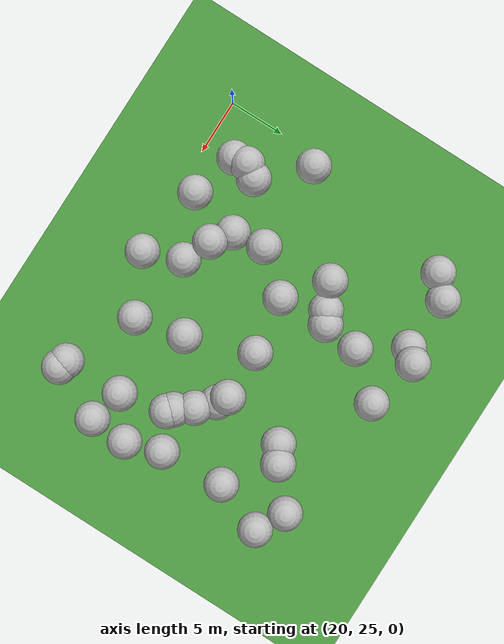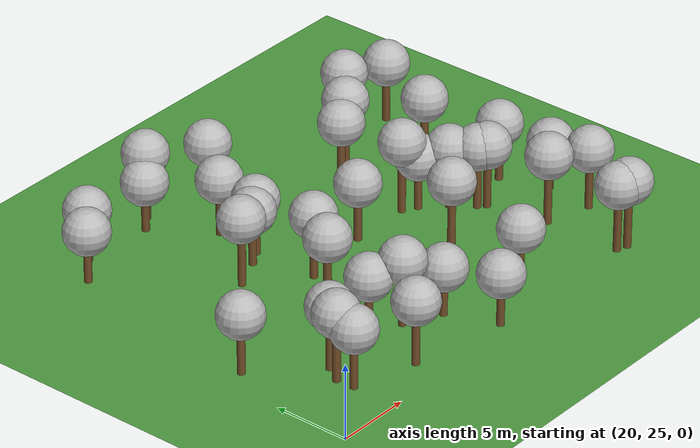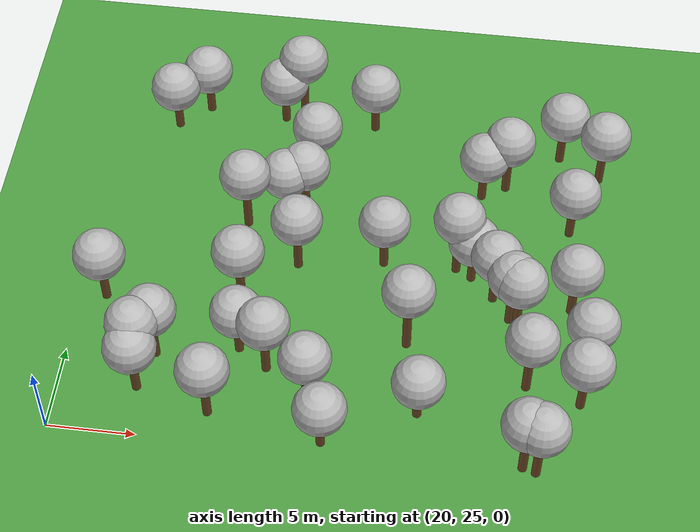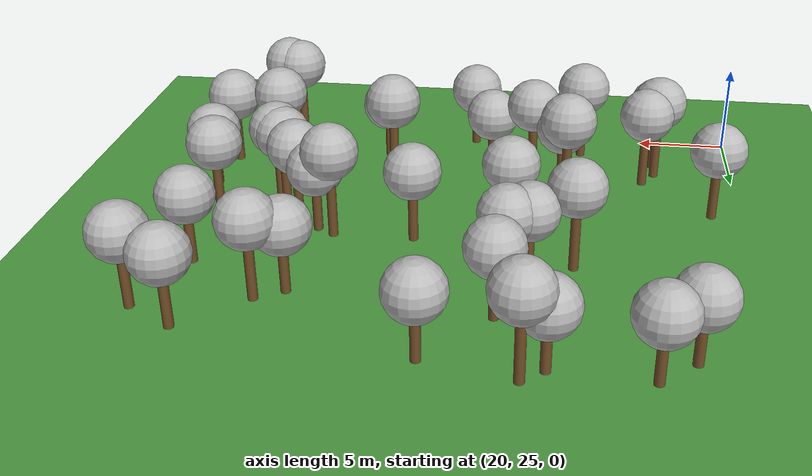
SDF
<sdf version="1.5">
 <world name="default">
  <model name="tree_simple475">
   <static>1</static>
   <link name="link">
    <pose>0 0 0.1 0 -0 0</pose>
    <collision name="collision_trunk">
     <pose>0 0 2 0 -0 0</pose>
     <geometry><cylinder><radius>0.25</radius><length>4</length></cylinder></geometry>
    </collision>
    <collision name="collision_treetop">
     <pose>0 0 5.2 0 -0 0</pose>
     <geometry><sphere><radius>1.5</radius></sphere></geometry>
    </collision>
    <visual name="trunk">
     <pose>0 0 2 0 -0 0</pose>
     <geometry><cylinder><radius>0.25</radius><length>4</length></cylinder></geometry>
     <material>
      <script>
       <uri>model://tree_simple/scripts</uri>
       <uri>model://tree_simple/materials/textures</uri>
       <name>TreeSimple/Trunk</name>
      </script>
     </material>
    </visual>
    <visual name="treetop">
     <pose>0 0 5.2 0 -0 0</pose>
     <geometry><sphere><radius>1.5</radius></sphere></geometry>
     <material>
      <script>
       <uri>model://tree_simple/scripts</uri>
       <uri>model://tree_simple/materials/textures</uri>
       <name>TreeSimple/Treetop</name>
      </script>
     </material>
    </visual>
   </link>
   <pose>30.9431222124 49.7431013716 -0.7436420474944433 0 -0 0</pose>
  </model>
  <model name="tree_simple459">
   <static>1</static>
   <link name="link">
    <pose>0 0 0.1 0 -0 0</pose>
    <collision name="collision_trunk">
     <pose>0 0 2 0 -0 0</pose>
     <geometry><cylinder><radius>0.25</radius><length>4</length></cylinder></geometry>
    </collision>
    <collision name="collision_treetop">
     <pose>0 0 5.2 0 -0 0</pose>
     <geometry><sphere><radius>1.5</radius></sphere></geometry>
    </collision>
    <visual name="trunk">
     <pose>0 0 2 0 -0 0</pose>
     <geometry><cylinder><radius>0.25</radius><length>4</length></cylinder></geometry>
     <material>
      <script>
       <uri>model://tree_simple/scripts</uri>
       <uri>model://tree_simple/materials/textures</uri>
       <name>TreeSimple/Trunk</name>
      </script>
     </material>
    </visual>
    <visual name="treetop">
     <pose>0 0 5.2 0 -0 0</pose>
     <geometry><sphere><radius>1.5</radius></sphere></geometry>
     <material>
      <script>
       <uri>model://tree_simple/scripts</uri>
       <uri>model://tree_simple/materials/textures</uri>
       <name>TreeSimple/Treetop</name>
      </script>
     </material>
    </visual>
   </link>
   <pose>23.3051385383 47.6025012909 -1.8805198108866412 0 -0 0</pose>
  </model>
  <model name="tree_simple452">
   <static>1</static>
   <link name="link">
    <pose>0 0 0.1 0 -0 0</pose>
    <collision name="collision_trunk">
     <pose>0 0 2 0 -0 0</pose>
     <geometry><cylinder><radius>0.25</radius><length>4</length></cylinder></geometry>
    </collision>
    <collision name="collision_treetop">
     <pose>0 0 5.2 0 -0 0</pose>
     <geometry><sphere><radius>1.5</radius></sphere></geometry>
    </collision>
    <visual name="trunk">
     <pose>0 0 2 0 -0 0</pose>
     <geometry><cylinder><radius>0.25</radius><length>4</length></cylinder></geometry>
     <material>
      <script>
       <uri>model://tree_simple/scripts</uri>
       <uri>model://tree_simple/materials/textures</uri>
       <name>TreeSimple/Trunk</name>
      </script>
     </material>
    </visual>
    <visual name="treetop">
     <pose>0 0 5.2 0 -0 0</pose>
     <geometry><sphere><radius>1.5</radius></sphere></geometry>
     <material>
      <script>
       <uri>model://tree_simple/scripts</uri>
       <uri>model://tree_simple/materials/textures</uri>
       <name>TreeSimple/Treetop</name>
      </script>
     </material>
    </visual>
   </link>
   <pose>21.4881506157 34.0286005496 -1.3604405912358852 0 -0 0</pose>
  </model>
  <model name="tree_simple449">
   <static>1</static>
   <link name="link">
    <pose>0 0 0.1 0 -0 0</pose>
    <collision name="collision_trunk">
     <pose>0 0 2 0 -0 0</pose>
     <geometry><cylinder><radius>0.25</radius><length>4</length></cylinder></geometry>
    </collision>
    <collision name="collision_treetop">
     <pose>0 0 5.2 0 -0 0</pose>
     <geometry><sphere><radius>1.5</radius></sphere></geometry>
    </collision>
    <visual name="trunk">
     <pose>0 0 2 0 -0 0</pose>
     <geometry><cylinder><radius>0.25</radius><length>4</length></cylinder></geometry>
     <material>
      <script>
       <uri>model://tree_simple/scripts</uri>
       <uri>model://tree_simple/materials/textures</uri>
       <name>TreeSimple/Trunk</name>
      </script>
     </material>
    </visual>
    <visual name="treetop">
     <pose>0 0 5.2 0 -0 0</pose>
     <geometry><sphere><radius>1.5</radius></sphere></geometry>
     <material>
      <script>
       <uri>model://tree_simple/scripts</uri>
       <uri>model://tree_simple/materials/textures</uri>
       <name>TreeSimple/Treetop</name>
      </script>
     </material>
    </visual>
   </link>
   <pose>32.2301413543 37.584175072 -1.0511935308067706 0 -0 0</pose>
  </model>
  <model name="tree_simple435">
   <static>1</static>
   <link name="link">
    <pose>0 0 0.1 0 -0 0</pose>
    <collision name="collision_trunk">
     <pose>0 0 2 0 -0 0</pose>
     <geometry><cylinder><radius>0.25</radius><length>4</length></cylinder></geometry>
    </collision>
    <collision name="collision_treetop">
     <pose>0 0 5.2 0 -0 0</pose>
     <geometry><sphere><radius>1.5</radius></sphere></geometry>
    </collision>
    <visual name="trunk">
     <pose>0 0 2 0 -0 0</pose>
     <geometry><cylinder><radius>0.25</radius><length>4</length></cylinder></geometry>
     <material>
      <script>
       <uri>model://tree_simple/scripts</uri>
       <uri>model://tree_simple/materials/textures</uri>
       <name>TreeSimple/Trunk</name>
      </script>
     </material>
    </visual>
    <visual name="treetop">
     <pose>0 0 5.2 0 -0 0</pose>
     <geometry><sphere><radius>1.5</radius></sphere></geometry>
     <material>
      <script>
       <uri>model://tree_simple/scripts</uri>
       <uri>model://tree_simple/materials/textures</uri>
       <name>TreeSimple/Treetop</name>
      </script>
     </material>
    </visual>
   </link>
   <pose>25.0532985597 49.162593115 -1.7925780945889098 0 -0 0</pose>
  </model>
  <model name="tree_simple426">
   <static>1</static>
   <link name="link">
    <pose>0 0 0.1 0 -0 0</pose>
    <collision name="collision_trunk">
     <pose>0 0 2 0 -0 0</pose>
     <geometry><cylinder><radius>0.25</radius><length>4</length></cylinder></geometry>
    </collision>
    <collision name="collision_treetop">
     <pose>0 0 5.2 0 -0 0</pose>
     <geometry><sphere><radius>1.5</radius></sphere></geometry>
    </collision>
    <visual name="trunk">
     <pose>0 0 2 0 -0 0</pose>
     <geometry><cylinder><radius>0.25</radius><length>4</length></cylinder></geometry>
     <material>
      <script>
       <uri>model://tree_simple/scripts</uri>
       <uri>model://tree_simple/materials/textures</uri>
       <name>TreeSimple/Trunk</name>
      </script>
     </material>
    </visual>
    <visual name="treetop">
     <pose>0 0 5.2 0 -0 0</pose>
     <geometry><sphere><radius>1.5</radius></sphere></geometry>
     <material>
      <script>
       <uri>model://tree_simple/scripts</uri>
       <uri>model://tree_simple/materials/textures</uri>
       <name>TreeSimple/Treetop</name>
      </script>
     </material>
    </visual>
   </link>
   <pose>48.2961501598 36.1951986296 -1.3792273480327186 0 -0 0</pose>
  </model>
  <model name="tree_simple414">
   <static>1</static>
   <link name="link">
    <pose>0 0 0.1 0 -0 0</pose>
    <collision name="collision_trunk">
     <pose>0 0 2 0 -0 0</pose>
     <geometry><cylinder><radius>0.25</radius><length>4</length></cylinder></geometry>
    </collision>
    <collision name="collision_treetop">
     <pose>0 0 5.2 0 -0 0</pose>
     <geometry><sphere><radius>1.5</radius></sphere></geometry>
    </collision>
    <visual name="trunk">
     <pose>0 0 2 0 -0 0</pose>
     <geometry><cylinder><radius>0.25</radius><length>4</length></cylinder></geometry>
     <material>
      <script>
       <uri>model://tree_simple/scripts</uri>
       <uri>model://tree_simple/materials/textures</uri>
       <name>TreeSimple/Trunk</name>
      </script>
     </material>
    </visual>
    <visual name="treetop">
     <pose>0 0 5.2 0 -0 0</pose>
     <geometry><sphere><radius>1.5</radius></sphere></geometry>
     <material>
      <script>
       <uri>model://tree_simple/scripts</uri>
       <uri>model://tree_simple/materials/textures</uri>
       <name>TreeSimple/Treetop</name>
      </script>
     </material>
    </visual>
   </link>
   <pose>44.7953546514 35.1223055557 -1.1160719340544396 0 -0 0</pose>
  </model>
  <model name="tree_simple402">
   <static>1</static>
   <link name="link">
    <pose>0 0 0.1 0 -0 0</pose>
    <collision name="collision_trunk">
     <pose>0 0 2 0 -0 0</pose>
     <geometry><cylinder><radius>0.25</radius><length>4</length></cylinder></geometry>
    </collision>
    <collision name="collision_treetop">
     <pose>0 0 5.2 0 -0 0</pose>
     <geometry><sphere><radius>1.5</radius></sphere></geometry>
    </collision>
    <visual name="trunk">
     <pose>0 0 2 0 -0 0</pose>
     <geometry><cylinder><radius>0.25</radius><length>4</length></cylinder></geometry>
     <material>
      <script>
       <uri>model://tree_simple/scripts</uri>
       <uri>model://tree_simple/materials/textures</uri>
       <name>TreeSimple/Trunk</name>
      </script>
     </material>
    </visual>
    <visual name="treetop">
     <pose>0 0 5.2 0 -0 0</pose>
     <geometry><sphere><radius>1.5</radius></sphere></geometry>
     <material>
      <script>
       <uri>model://tree_simple/scripts</uri>
       <uri>model://tree_simple/materials/textures</uri>
       <name>TreeSimple/Treetop</name>
      </script>
     </material>
    </visual>
   </link>
   <pose>46.1530364681 25.5114731744 -0.8119257259758308 0 -0 0</pose>
  </model>
  <model name="tree_simple388">
   <static>1</static>
   <link name="link">
    <pose>0 0 0.1 0 -0 0</pose>
    <collision name="collision_trunk">
     <pose>0 0 2 0 -0 0</pose>
     <geometry><cylinder><radius>0.25</radius><length>4</length></cylinder></geometry>
    </collision>
    <collision name="collision_treetop">
     <pose>0 0 5.2 0 -0 0</pose>
     <geometry><sphere><radius>1.5</radius></sphere></geometry>
    </collision>
    <visual name="trunk">
     <pose>0 0 2 0 -0 0</pose>
     <geometry><cylinder><radius>0.25</radius><length>4</length></cylinder></geometry>
     <material>
      <script>
       <uri>model://tree_simple/scripts</uri>
       <uri>model://tree_simple/materials/textures</uri>
       <name>TreeSimple/Trunk</name>
      </script>
     </material>
    </visual>
    <visual name="treetop">
     <pose>0 0 5.2 0 -0 0</pose>
     <geometry><sphere><radius>1.5</radius></sphere></geometry>
     <material>
      <script>
       <uri>model://tree_simple/scripts</uri>
       <uri>model://tree_simple/materials/textures</uri>
       <name>TreeSimple/Treetop</name>
      </script>
     </material>
    </visual>
   </link>
   <pose>42.4041487093 37.8396173547 -1.752244202198721 0 -0 0</pose>
  </model>
  <model name="tree_simple384">
   <static>1</static>
   <link name="link">
    <pose>0 0 0.1 0 -0 0</pose>
    <collision name="collision_trunk">
     <pose>0 0 2 0 -0 0</pose>
     <geometry><cylinder><radius>0.25</radius><length>4</length></cylinder></geometry>
    </collision>
    <collision name="collision_treetop">
     <pose>0 0 5.2 0 -0 0</pose>
     <geometry><sphere><radius>1.5</radius></sphere></geometry>
    </collision>
    <visual name="trunk">
     <pose>0 0 2 0 -0 0</pose>
     <geometry><cylinder><radius>0.25</radius><length>4</length></cylinder></geometry>
     <material>
      <script>
       <uri>model://tree_simple/scripts</uri>
       <uri>model://tree_simple/materials/textures</uri>
       <name>TreeSimple/Trunk</name>
      </script>
     </material>
    </visual>
    <visual name="treetop">
     <pose>0 0 5.2 0 -0 0</pose>
     <geometry><sphere><radius>1.5</radius></sphere></geometry>
     <material>
      <script>
       <uri>model://tree_simple/scripts</uri>
       <uri>model://tree_simple/materials/textures</uri>
       <name>TreeSimple/Treetop</name>
      </script>
     </material>
    </visual>
   </link>
   <pose>47.965270182 41.8315973536 -1.5592724970645218 0 -0 0</pose>
  </model>
  <model name="tree_simple366">
   <static>1</static>
   <link name="link">
    <pose>0 0 0.1 0 -0 0</pose>
    <collision name="collision_trunk">
     <pose>0 0 2 0 -0 0</pose>
     <geometry><cylinder><radius>0.25</radius><length>4</length></cylinder></geometry>
    </collision>
    <collision name="collision_treetop">
     <pose>0 0 5.2 0 -0 0</pose>
     <geometry><sphere><radius>1.5</radius></sphere></geometry>
    </collision>
    <visual name="trunk">
     <pose>0 0 2 0 -0 0</pose>
     <geometry><cylinder><radius>0.25</radius><length>4</length></cylinder></geometry>
     <material>
      <script>
       <uri>model://tree_simple/scripts</uri>
       <uri>model://tree_simple/materials/textures</uri>
       <name>TreeSimple/Trunk</name>
      </script>
     </material>
    </visual>
    <visual name="treetop">
     <pose>0 0 5.2 0 -0 0</pose>
     <geometry><sphere><radius>1.5</radius></sphere></geometry>
     <material>
      <script>
       <uri>model://tree_simple/scripts</uri>
       <uri>model://tree_simple/materials/textures</uri>
       <name>TreeSimple/Treetop</name>
      </script>
     </material>
    </visual>
   </link>
   <pose>37.2116014065 38.3075288524 -1.3963401429729114 0 -0 0</pose>
  </model>
  <model name="tree_simple345">
   <static>1</static>
   <link name="link">
    <pose>0 0 0.1 0 -0 0</pose>
    <collision name="collision_trunk">
     <pose>0 0 2 0 -0 0</pose>
     <geometry><cylinder><radius>0.25</radius><length>4</length></cylinder></geometry>
    </collision>
    <collision name="collision_treetop">
     <pose>0 0 5.2 0 -0 0</pose>
     <geometry><sphere><radius>1.5</radius></sphere></geometry>
    </collision>
    <visual name="trunk">
     <pose>0 0 2 0 -0 0</pose>
     <geometry><cylinder><radius>0.25</radius><length>4</length></cylinder></geometry>
     <material>
      <script>
       <uri>model://tree_simple/scripts</uri>
       <uri>model://tree_simple/materials/textures</uri>
       <name>TreeSimple/Trunk</name>
      </script>
     </material>
    </visual>
    <visual name="treetop">
     <pose>0 0 5.2 0 -0 0</pose>
     <geometry><sphere><radius>1.5</radius></sphere></geometry>
     <material>
      <script>
       <uri>model://tree_simple/scripts</uri>
       <uri>model://tree_simple/materials/textures</uri>
       <name>TreeSimple/Treetop</name>
      </script>
     </material>
    </visual>
   </link>
   <pose>28.6628994432 26.9095330542 -1.0408893927973466 0 -0 0</pose>
  </model>
  <model name="tree_simple337">
   <static>1</static>
   <link name="link">
    <pose>0 0 0.1 0 -0 0</pose>
    <collision name="collision_trunk">
     <pose>0 0 2 0 -0 0</pose>
     <geometry><cylinder><radius>0.25</radius><length>4</length></cylinder></geometry>
    </collision>
    <collision name="collision_treetop">
     <pose>0 0 5.2 0 -0 0</pose>
     <geometry><sphere><radius>1.5</radius></sphere></geometry>
    </collision>
    <visual name="trunk">
     <pose>0 0 2 0 -0 0</pose>
     <geometry><cylinder><radius>0.25</radius><length>4</length></cylinder></geometry>
     <material>
      <script>
       <uri>model://tree_simple/scripts</uri>
       <uri>model://tree_simple/materials/textures</uri>
       <name>TreeSimple/Trunk</name>
      </script>
     </material>
    </visual>
    <visual name="treetop">
     <pose>0 0 5.2 0 -0 0</pose>
     <geometry><sphere><radius>1.5</radius></sphere></geometry>
     <material>
      <script>
       <uri>model://tree_simple/scripts</uri>
       <uri>model://tree_simple/materials/textures</uri>
       <name>TreeSimple/Treetop</name>
      </script>
     </material>
    </visual>
   </link>
   <pose>43.9549385006 44.8684303608 -1.0075417705958503 0 -0 0</pose>
  </model>
  <model name="tree_simple332">
   <static>1</static>
   <link name="link">
    <pose>0 0 0.1 0 -0 0</pose>
    <collision name="collision_trunk">
     <pose>0 0 2 0 -0 0</pose>
     <geometry><cylinder><radius>0.25</radius><length>4</length></cylinder></geometry>
    </collision>
    <collision name="collision_treetop">
     <pose>0 0 5.2 0 -0 0</pose>
     <geometry><sphere><radius>1.5</radius></sphere></geometry>
    </collision>
    <visual name="trunk">
     <pose>0 0 2 0 -0 0</pose>
     <geometry><cylinder><radius>0.25</radius><length>4</length></cylinder></geometry>
     <material>
      <script>
       <uri>model://tree_simple/scripts</uri>
       <uri>model://tree_simple/materials/textures</uri>
       <name>TreeSimple/Trunk</name>
      </script>
     </material>
    </visual>
    <visual name="treetop">
     <pose>0 0 5.2 0 -0 0</pose>
     <geometry><sphere><radius>1.5</radius></sphere></geometry>
     <material>
      <script>
       <uri>model://tree_simple/scripts</uri>
       <uri>model://tree_simple/materials/textures</uri>
       <name>TreeSimple/Treetop</name>
      </script>
     </material>
    </visual>
   </link>
   <pose>39.1289157524 32.636662066 -0.0 0 -0 0</pose>
  </model>
  <model name="tree_simple313">
   <static>1</static>
   <link name="link">
    <pose>0 0 0.1 0 -0 0</pose>
    <collision name="collision_trunk">
     <pose>0 0 2 0 -0 0</pose>
     <geometry><cylinder><radius>0.25</radius><length>4</length></cylinder></geometry>
    </collision>
    <collision name="collision_treetop">
     <pose>0 0 5.2 0 -0 0</pose>
     <geometry><sphere><radius>1.5</radius></sphere></geometry>
    </collision>
    <visual name="trunk">
     <pose>0 0 2 0 -0 0</pose>
     <geometry><cylinder><radius>0.25</radius><length>4</length></cylinder></geometry>
     <material>
      <script>
       <uri>model://tree_simple/scripts</uri>
       <uri>model://tree_simple/materials/textures</uri>
       <name>TreeSimple/Trunk</name>
      </script>
     </material>
    </visual>
    <visual name="treetop">
     <pose>0 0 5.2 0 -0 0</pose>
     <geometry><sphere><radius>1.5</radius></sphere></geometry>
     <material>
      <script>
       <uri>model://tree_simple/scripts</uri>
       <uri>model://tree_simple/materials/textures</uri>
       <name>TreeSimple/Treetop</name>
      </script>
     </material>
    </visual>
   </link>
   <pose>25.1046881591 30.4098930382 -1.074062581670051 0 -0 0</pose>
  </model>
  <model name="tree_simple306">
   <static>1</static>
   <link name="link">
    <pose>0 0 0.1 0 -0 0</pose>
    <collision name="collision_trunk">
     <pose>0 0 2 0 -0 0</pose>
     <geometry><cylinder><radius>0.25</radius><length>4</length></cylinder></geometry>
    </collision>
    <collision name="collision_treetop">
     <pose>0 0 5.2 0 -0 0</pose>
     <geometry><sphere><radius>1.5</radius></sphere></geometry>
    </collision>
    <visual name="trunk">
     <pose>0 0 2 0 -0 0</pose>
     <geometry><cylinder><radius>0.25</radius><length>4</length></cylinder></geometry>
     <material>
      <script>
       <uri>model://tree_simple/scripts</uri>
       <uri>model://tree_simple/materials/textures</uri>
       <name>TreeSimple/Trunk</name>
      </script>
     </material>
    </visual>
    <visual name="treetop">
     <pose>0 0 5.2 0 -0 0</pose>
     <geometry><sphere><radius>1.5</radius></sphere></geometry>
     <material>
      <script>
       <uri>model://tree_simple/scripts</uri>
       <uri>model://tree_simple/materials/textures</uri>
       <name>TreeSimple/Treetop</name>
      </script>
     </material>
    </visual>
   </link>
   <pose>41.4749799485 38.3641433375 -0.5054580390471515 0 -0 0</pose>
  </model>
  <model name="tree_simple295">
   <static>1</static>
   <link name="link">
    <pose>0 0 0.1 0 -0 0</pose>
    <collision name="collision_trunk">
     <pose>0 0 2 0 -0 0</pose>
     <geometry><cylinder><radius>0.25</radius><length>4</length></cylinder></geometry>
    </collision>
    <collision name="collision_treetop">
     <pose>0 0 5.2 0 -0 0</pose>
     <geometry><sphere><radius>1.5</radius></sphere></geometry>
    </collision>
    <visual name="trunk">
     <pose>0 0 2 0 -0 0</pose>
     <geometry><cylinder><radius>0.25</radius><length>4</length></cylinder></geometry>
     <material>
      <script>
       <uri>model://tree_simple/scripts</uri>
       <uri>model://tree_simple/materials/textures</uri>
       <name>TreeSimple/Trunk</name>
      </script>
     </material>
    </visual>
    <visual name="treetop">
     <pose>0 0 5.2 0 -0 0</pose>
     <geometry><sphere><radius>1.5</radius></sphere></geometry>
     <material>
      <script>
       <uri>model://tree_simple/scripts</uri>
       <uri>model://tree_simple/materials/textures</uri>
       <name>TreeSimple/Treetop</name>
      </script>
     </material>
    </visual>
   </link>
   <pose>24.4545500201 28.0657933919 -1.3475005062212249 0 -0 0</pose>
  </model>
  <model name="tree_simple294">
   <static>1</static>
   <link name="link">
    <pose>0 0 0.1 0 -0 0</pose>
    <collision name="collision_trunk">
     <pose>0 0 2 0 -0 0</pose>
     <geometry><cylinder><radius>0.25</radius><length>4</length></cylinder></geometry>
    </collision>
    <collision name="collision_treetop">
     <pose>0 0 5.2 0 -0 0</pose>
     <geometry><sphere><radius>1.5</radius></sphere></geometry>
    </collision>
    <visual name="trunk">
     <pose>0 0 2 0 -0 0</pose>
     <geometry><cylinder><radius>0.25</radius><length>4</length></cylinder></geometry>
     <material>
      <script>
       <uri>model://tree_simple/scripts</uri>
       <uri>model://tree_simple/materials/textures</uri>
       <name>TreeSimple/Trunk</name>
      </script>
     </material>
    </visual>
    <visual name="treetop">
     <pose>0 0 5.2 0 -0 0</pose>
     <geometry><sphere><radius>1.5</radius></sphere></geometry>
     <material>
      <script>
       <uri>model://tree_simple/scripts</uri>
       <uri>model://tree_simple/materials/textures</uri>
       <name>TreeSimple/Treetop</name>
      </script>
     </material>
    </visual>
   </link>
   <pose>29.4568486027 34.1994676111 -0.0 0 -0 0</pose>
  </model>
  <model name="tree_simple265">
   <static>1</static>
   <link name="link">
    <pose>0 0 0.1 0 -0 0</pose>
    <collision name="collision_trunk">
     <pose>0 0 2 0 -0 0</pose>
     <geometry><cylinder><radius>0.25</radius><length>4</length></cylinder></geometry>
    </collision>
    <collision name="collision_treetop">
     <pose>0 0 5.2 0 -0 0</pose>
     <geometry><sphere><radius>1.5</radius></sphere></geometry>
    </collision>
    <visual name="trunk">
     <pose>0 0 2 0 -0 0</pose>
     <geometry><cylinder><radius>0.25</radius><length>4</length></cylinder></geometry>
     <material>
      <script>
       <uri>model://tree_simple/scripts</uri>
       <uri>model://tree_simple/materials/textures</uri>
       <name>TreeSimple/Trunk</name>
      </script>
     </material>
    </visual>
    <visual name="treetop">
     <pose>0 0 5.2 0 -0 0</pose>
     <geometry><sphere><radius>1.5</radius></sphere></geometry>
     <material>
      <script>
       <uri>model://tree_simple/scripts</uri>
       <uri>model://tree_simple/materials/textures</uri>
       <name>TreeSimple/Treetop</name>
      </script>
     </material>
    </visual>
   </link>
   <pose>49.0905511153 29.866561196 -1.2177053354921583 0 -0 0</pose>
  </model>
  <model name="tree_simple258">
   <static>1</static>
   <link name="link">
    <pose>0 0 0.1 0 -0 0</pose>
    <collision name="collision_trunk">
     <pose>0 0 2 0 -0 0</pose>
     <geometry><cylinder><radius>0.25</radius><length>4</length></cylinder></geometry>
    </collision>
    <collision name="collision_treetop">
     <pose>0 0 5.2 0 -0 0</pose>
     <geometry><sphere><radius>1.5</radius></sphere></geometry>
    </collision>
    <visual name="trunk">
     <pose>0 0 2 0 -0 0</pose>
     <geometry><cylinder><radius>0.25</radius><length>4</length></cylinder></geometry>
     <material>
      <script>
       <uri>model://tree_simple/scripts</uri>
       <uri>model://tree_simple/materials/textures</uri>
       <name>TreeSimple/Trunk</name>
      </script>
     </material>
    </visual>
    <visual name="treetop">
     <pose>0 0 5.2 0 -0 0</pose>
     <geometry><sphere><radius>1.5</radius></sphere></geometry>
     <material>
      <script>
       <uri>model://tree_simple/scripts</uri>
       <uri>model://tree_simple/materials/textures</uri>
       <name>TreeSimple/Treetop</name>
      </script>
     </material>
    </visual>
   </link>
   <pose>24.3825797899 29.2966391115 -0.7796025297423168 0 -0 0</pose>
  </model>
  <model name="tree_simple238">
   <static>1</static>
   <link name="link">
    <pose>0 0 0.1 0 -0 0</pose>
    <collision name="collision_trunk">
     <pose>0 0 2 0 -0 0</pose>
     <geometry><cylinder><radius>0.25</radius><length>4</length></cylinder></geometry>
    </collision>
    <collision name="collision_treetop">
     <pose>0 0 5.2 0 -0 0</pose>
     <geometry><sphere><radius>1.5</radius></sphere></geometry>
    </collision>
    <visual name="trunk">
     <pose>0 0 2 0 -0 0</pose>
     <geometry><cylinder><radius>0.25</radius><length>4</length></cylinder></geometry>
     <material>
      <script>
       <uri>model://tree_simple/scripts</uri>
       <uri>model://tree_simple/materials/textures</uri>
       <name>TreeSimple/Trunk</name>
      </script>
     </material>
    </visual>
    <visual name="treetop">
     <pose>0 0 5.2 0 -0 0</pose>
     <geometry><sphere><radius>1.5</radius></sphere></geometry>
     <material>
      <script>
       <uri>model://tree_simple/scripts</uri>
       <uri>model://tree_simple/materials/textures</uri>
       <name>TreeSimple/Treetop</name>
      </script>
     </material>
    </visual>
   </link>
   <pose>46.8869167901 25.2834545483 -0.7516137166440187 0 -0 0</pose>
  </model>
  <model name="tree_simple230">
   <static>1</static>
   <link name="link">
    <pose>0 0 0.1 0 -0 0</pose>
    <collision name="collision_trunk">
     <pose>0 0 2 0 -0 0</pose>
     <geometry><cylinder><radius>0.25</radius><length>4</length></cylinder></geometry>
    </collision>
    <collision name="collision_treetop">
     <pose>0 0 5.2 0 -0 0</pose>
     <geometry><sphere><radius>1.5</radius></sphere></geometry>
    </collision>
    <visual name="trunk">
     <pose>0 0 2 0 -0 0</pose>
     <geometry><cylinder><radius>0.25</radius><length>4</length></cylinder></geometry>
     <material>
      <script>
       <uri>model://tree_simple/scripts</uri>
       <uri>model://tree_simple/materials/textures</uri>
       <name>TreeSimple/Trunk</name>
      </script>
     </material>
    </visual>
    <visual name="treetop">
     <pose>0 0 5.2 0 -0 0</pose>
     <geometry><sphere><radius>1.5</radius></sphere></geometry>
     <material>
      <script>
       <uri>model://tree_simple/scripts</uri>
       <uri>model://tree_simple/materials/textures</uri>
       <name>TreeSimple/Treetop</name>
      </script>
     </material>
    </visual>
   </link>
   <pose>49.3839982887 33.0886722223 -2.022531893103811 0 -0 0</pose>
  </model>
  <model name="tree_simple197">
   <static>1</static>
   <link name="link">
    <pose>0 0 0.1 0 -0 0</pose>
    <collision name="collision_trunk">
     <pose>0 0 2 0 -0 0</pose>
     <geometry><cylinder><radius>0.25</radius><length>4</length></cylinder></geometry>
    </collision>
    <collision name="collision_treetop">
     <pose>0 0 5.2 0 -0 0</pose>
     <geometry><sphere><radius>1.5</radius></sphere></geometry>
    </collision>
    <visual name="trunk">
     <pose>0 0 2 0 -0 0</pose>
     <geometry><cylinder><radius>0.25</radius><length>4</length></cylinder></geometry>
     <material>
      <script>
       <uri>model://tree_simple/scripts</uri>
       <uri>model://tree_simple/materials/textures</uri>
       <name>TreeSimple/Trunk</name>
      </script>
     </material>
    </visual>
    <visual name="treetop">
     <pose>0 0 5.2 0 -0 0</pose>
     <geometry><sphere><radius>1.5</radius></sphere></geometry>
     <material>
      <script>
       <uri>model://tree_simple/scripts</uri>
       <uri>model://tree_simple/materials/textures</uri>
       <name>TreeSimple/Treetop</name>
      </script>
     </material>
    </visual>
   </link>
   <pose>45.2259514073 34.7129577048 -1.0386840931823416 0 -0 0</pose>
  </model>
  <model name="tree_simple190">
   <static>1</static>
   <link name="link">
    <pose>0 0 0.1 0 -0 0</pose>
    <collision name="collision_trunk">
     <pose>0 0 2 0 -0 0</pose>
     <geometry><cylinder><radius>0.25</radius><length>4</length></cylinder></geometry>
    </collision>
    <collision name="collision_treetop">
     <pose>0 0 5.2 0 -0 0</pose>
     <geometry><sphere><radius>1.5</radius></sphere></geometry>
    </collision>
    <visual name="trunk">
     <pose>0 0 2 0 -0 0</pose>
     <geometry><cylinder><radius>0.25</radius><length>4</length></cylinder></geometry>
     <material>
      <script>
       <uri>model://tree_simple/scripts</uri>
       <uri>model://tree_simple/materials/textures</uri>
       <name>TreeSimple/Trunk</name>
      </script>
     </material>
    </visual>
    <visual name="treetop">
     <pose>0 0 5.2 0 -0 0</pose>
     <geometry><sphere><radius>1.5</radius></sphere></geometry>
     <material>
      <script>
       <uri>model://tree_simple/scripts</uri>
       <uri>model://tree_simple/materials/textures</uri>
       <name>TreeSimple/Treetop</name>
      </script>
     </material>
    </visual>
   </link>
   <pose>33.8682165362 29.0192768916 -2.0784861022589056 0 -0 0</pose>
  </model>
  <model name="tree_simple180">
   <static>1</static>
   <link name="link">
    <pose>0 0 0.1 0 -0 0</pose>
    <collision name="collision_trunk">
     <pose>0 0 2 0 -0 0</pose>
     <geometry><cylinder><radius>0.25</radius><length>4</length></cylinder></geometry>
    </collision>
    <collision name="collision_treetop">
     <pose>0 0 5.2 0 -0 0</pose>
     <geometry><sphere><radius>1.5</radius></sphere></geometry>
    </collision>
    <visual name="trunk">
     <pose>0 0 2 0 -0 0</pose>
     <geometry><cylinder><radius>0.25</radius><length>4</length></cylinder></geometry>
     <material>
      <script>
       <uri>model://tree_simple/scripts</uri>
       <uri>model://tree_simple/materials/textures</uri>
       <name>TreeSimple/Trunk</name>
      </script>
     </material>
    </visual>
    <visual name="treetop">
     <pose>0 0 5.2 0 -0 0</pose>
     <geometry><sphere><radius>1.5</radius></sphere></geometry>
     <material>
      <script>
       <uri>model://tree_simple/scripts</uri>
       <uri>model://tree_simple/materials/textures</uri>
       <name>TreeSimple/Treetop</name>
      </script>
     </material>
    </visual>
   </link>
   <pose>31.0354412198 41.3621247095 -1.6273044035756021 0 -0 0</pose>
  </model>
  <model name="tree_simple164">
   <static>1</static>
   <link name="link">
    <pose>0 0 0.1 0 -0 0</pose>
    <collision name="collision_trunk">
     <pose>0 0 2 0 -0 0</pose>
     <geometry><cylinder><radius>0.25</radius><length>4</length></cylinder></geometry>
    </collision>
    <collision name="collision_treetop">
     <pose>0 0 5.2 0 -0 0</pose>
     <geometry><sphere><radius>1.5</radius></sphere></geometry>
    </collision>
    <visual name="trunk">
     <pose>0 0 2 0 -0 0</pose>
     <geometry><cylinder><radius>0.25</radius><length>4</length></cylinder></geometry>
     <material>
      <script>
       <uri>model://tree_simple/scripts</uri>
       <uri>model://tree_simple/materials/textures</uri>
       <name>TreeSimple/Trunk</name>
      </script>
     </material>
    </visual>
    <visual name="treetop">
     <pose>0 0 5.2 0 -0 0</pose>
     <geometry><sphere><radius>1.5</radius></sphere></geometry>
     <material>
      <script>
       <uri>model://tree_simple/scripts</uri>
       <uri>model://tree_simple/materials/textures</uri>
       <name>TreeSimple/Treetop</name>
      </script>
     </material>
    </visual>
   </link>
   <pose>32.4161735763 45.136147052 -1.5207001204906656 0 -0 0</pose>
  </model>
  <model name="tree_simple159">
   <static>1</static>
   <link name="link">
    <pose>0 0 0.1 0 -0 0</pose>
    <collision name="collision_trunk">
     <pose>0 0 2 0 -0 0</pose>
     <geometry><cylinder><radius>0.25</radius><length>4</length></cylinder></geometry>
    </collision>
    <collision name="collision_treetop">
     <pose>0 0 5.2 0 -0 0</pose>
     <geometry><sphere><radius>1.5</radius></sphere></geometry>
    </collision>
    <visual name="trunk">
     <pose>0 0 2 0 -0 0</pose>
     <geometry><cylinder><radius>0.25</radius><length>4</length></cylinder></geometry>
     <material>
      <script>
       <uri>model://tree_simple/scripts</uri>
       <uri>model://tree_simple/materials/textures</uri>
       <name>TreeSimple/Trunk</name>
      </script>
     </material>
    </visual>
    <visual name="treetop">
     <pose>0 0 5.2 0 -0 0</pose>
     <geometry><sphere><radius>1.5</radius></sphere></geometry>
     <material>
      <script>
       <uri>model://tree_simple/scripts</uri>
       <uri>model://tree_simple/materials/textures</uri>
       <name>TreeSimple/Treetop</name>
      </script>
     </material>
    </visual>
   </link>
   <pose>28.8379877366 40.3060921844 -0.7977368019459941 0 -0 0</pose>
  </model>
  <model name="tree_simple150">
   <static>1</static>
   <link name="link">
    <pose>0 0 0.1 0 -0 0</pose>
    <collision name="collision_trunk">
     <pose>0 0 2 0 -0 0</pose>
     <geometry><cylinder><radius>0.25</radius><length>4</length></cylinder></geometry>
    </collision>
    <collision name="collision_treetop">
     <pose>0 0 5.2 0 -0 0</pose>
     <geometry><sphere><radius>1.5</radius></sphere></geometry>
    </collision>
    <visual name="trunk">
     <pose>0 0 2 0 -0 0</pose>
     <geometry><cylinder><radius>0.25</radius><length>4</length></cylinder></geometry>
     <material>
      <script>
       <uri>model://tree_simple/scripts</uri>
       <uri>model://tree_simple/materials/textures</uri>
       <name>TreeSimple/Trunk</name>
      </script>
     </material>
    </visual>
    <visual name="treetop">
     <pose>0 0 5.2 0 -0 0</pose>
     <geometry><sphere><radius>1.5</radius></sphere></geometry>
     <material>
      <script>
       <uri>model://tree_simple/scripts</uri>
       <uri>model://tree_simple/materials/textures</uri>
       <name>TreeSimple/Treetop</name>
      </script>
     </material>
    </visual>
   </link>
   <pose>40.1655547132 28.2074332225 -2.063981799655462 0 -0 0</pose>
  </model>
  <model name="tree_simple144">
   <static>1</static>
   <link name="link">
    <pose>0 0 0.1 0 -0 0</pose>
    <collision name="collision_trunk">
     <pose>0 0 2 0 -0 0</pose>
     <geometry><cylinder><radius>0.25</radius><length>4</length></cylinder></geometry>
    </collision>
    <collision name="collision_treetop">
     <pose>0 0 5.2 0 -0 0</pose>
     <geometry><sphere><radius>1.5</radius></sphere></geometry>
    </collision>
    <visual name="trunk">
     <pose>0 0 2 0 -0 0</pose>
     <geometry><cylinder><radius>0.25</radius><length>4</length></cylinder></geometry>
     <material>
      <script>
       <uri>model://tree_simple/scripts</uri>
       <uri>model://tree_simple/materials/textures</uri>
       <name>TreeSimple/Trunk</name>
      </script>
     </material>
    </visual>
    <visual name="treetop">
     <pose>0 0 5.2 0 -0 0</pose>
     <geometry><sphere><radius>1.5</radius></sphere></geometry>
     <material>
      <script>
       <uri>model://tree_simple/scripts</uri>
       <uri>model://tree_simple/materials/textures</uri>
       <name>TreeSimple/Treetop</name>
      </script>
     </material>
    </visual>
   </link>
   <pose>29.8740769381 48.8863352602 -1.9576972700802444 0 -0 0</pose>
  </model>
  <model name="tree_simple131">
   <static>1</static>
   <link name="link">
    <pose>0 0 0.1 0 -0 0</pose>
    <collision name="collision_trunk">
     <pose>0 0 2 0 -0 0</pose>
     <geometry><cylinder><radius>0.25</radius><length>4</length></cylinder></geometry>
    </collision>
    <collision name="collision_treetop">
     <pose>0 0 5.2 0 -0 0</pose>
     <geometry><sphere><radius>1.5</radius></sphere></geometry>
    </collision>
    <visual name="trunk">
     <pose>0 0 2 0 -0 0</pose>
     <geometry><cylinder><radius>0.25</radius><length>4</length></cylinder></geometry>
     <material>
      <script>
       <uri>model://tree_simple/scripts</uri>
       <uri>model://tree_simple/materials/textures</uri>
       <name>TreeSimple/Trunk</name>
      </script>
     </material>
    </visual>
    <visual name="treetop">
     <pose>0 0 5.2 0 -0 0</pose>
     <geometry><sphere><radius>1.5</radius></sphere></geometry>
     <material>
      <script>
       <uri>model://tree_simple/scripts</uri>
       <uri>model://tree_simple/materials/textures</uri>
       <name>TreeSimple/Treetop</name>
      </script>
     </material>
    </visual>
   </link>
   <pose>46.034478037 30.677477771 -0.6274972432974455 0 -0 0</pose>
  </model>
  <model name="tree_simple99">
   <static>1</static>
   <link name="link">
    <pose>0 0 0.1 0 -0 0</pose>
    <collision name="collision_trunk">
     <pose>0 0 2 0 -0 0</pose>
     <geometry><cylinder><radius>0.25</radius><length>4</length></cylinder></geometry>
    </collision>
    <collision name="collision_treetop">
     <pose>0 0 5.2 0 -0 0</pose>
     <geometry><sphere><radius>1.5</radius></sphere></geometry>
    </collision>
    <visual name="trunk">
     <pose>0 0 2 0 -0 0</pose>
     <geometry><cylinder><radius>0.25</radius><length>4</length></cylinder></geometry>
     <material>
      <script>
       <uri>model://tree_simple/scripts</uri>
       <uri>model://tree_simple/materials/textures</uri>
       <name>TreeSimple/Trunk</name>
      </script>
     </material>
    </visual>
    <visual name="treetop">
     <pose>0 0 5.2 0 -0 0</pose>
     <geometry><sphere><radius>1.5</radius></sphere></geometry>
     <material>
      <script>
       <uri>model://tree_simple/scripts</uri>
       <uri>model://tree_simple/materials/textures</uri>
       <name>TreeSimple/Treetop</name>
      </script>
     </material>
    </visual>
   </link>
   <pose>43.7646885834 36.5094094544 -1.2217779047430448 0 -0 0</pose>
  </model>
  <model name="tree_simple97">
   <static>1</static>
   <link name="link">
    <pose>0 0 0.1 0 -0 0</pose>
    <collision name="collision_trunk">
     <pose>0 0 2 0 -0 0</pose>
     <geometry><cylinder><radius>0.25</radius><length>4</length></cylinder></geometry>
    </collision>
    <collision name="collision_treetop">
     <pose>0 0 5.2 0 -0 0</pose>
     <geometry><sphere><radius>1.5</radius></sphere></geometry>
    </collision>
    <visual name="trunk">
     <pose>0 0 2 0 -0 0</pose>
     <geometry><cylinder><radius>0.25</radius><length>4</length></cylinder></geometry>
     <material>
      <script>
       <uri>model://tree_simple/scripts</uri>
       <uri>model://tree_simple/materials/textures</uri>
       <name>TreeSimple/Trunk</name>
      </script>
     </material>
    </visual>
    <visual name="treetop">
     <pose>0 0 5.2 0 -0 0</pose>
     <geometry><sphere><radius>1.5</radius></sphere></geometry>
     <material>
      <script>
       <uri>model://tree_simple/scripts</uri>
       <uri>model://tree_simple/materials/textures</uri>
       <name>TreeSimple/Treetop</name>
      </script>
     </material>
    </visual>
   </link>
   <pose>31.4551659001 30.1710524081 -0.9022805878636118 0 -0 0</pose>
  </model>
  <model name="tree_simple78">
   <static>1</static>
   <link name="link">
    <pose>0 0 0.1 0 -0 0</pose>
    <collision name="collision_trunk">
     <pose>0 0 2 0 -0 0</pose>
     <geometry><cylinder><radius>0.25</radius><length>4</length></cylinder></geometry>
    </collision>
    <collision name="collision_treetop">
     <pose>0 0 5.2 0 -0 0</pose>
     <geometry><sphere><radius>1.5</radius></sphere></geometry>
    </collision>
    <visual name="trunk">
     <pose>0 0 2 0 -0 0</pose>
     <geometry><cylinder><radius>0.25</radius><length>4</length></cylinder></geometry>
     <material>
      <script>
       <uri>model://tree_simple/scripts</uri>
       <uri>model://tree_simple/materials/textures</uri>
       <name>TreeSimple/Trunk</name>
      </script>
     </material>
    </visual>
    <visual name="treetop">
     <pose>0 0 5.2 0 -0 0</pose>
     <geometry><sphere><radius>1.5</radius></sphere></geometry>
     <material>
      <script>
       <uri>model://tree_simple/scripts</uri>
       <uri>model://tree_simple/materials/textures</uri>
       <name>TreeSimple/Treetop</name>
      </script>
     </material>
    </visual>
   </link>
   <pose>35.525854971 48.7689145504 -1.7257806621200424 0 -0 0</pose>
  </model>
  <model name="tree_simple65">
   <static>1</static>
   <link name="link">
    <pose>0 0 0.1 0 -0 0</pose>
    <collision name="collision_trunk">
     <pose>0 0 2 0 -0 0</pose>
     <geometry><cylinder><radius>0.25</radius><length>4</length></cylinder></geometry>
    </collision>
    <collision name="collision_treetop">
     <pose>0 0 5.2 0 -0 0</pose>
     <geometry><sphere><radius>1.5</radius></sphere></geometry>
    </collision>
    <visual name="trunk">
     <pose>0 0 2 0 -0 0</pose>
     <geometry><cylinder><radius>0.25</radius><length>4</length></cylinder></geometry>
     <material>
      <script>
       <uri>model://tree_simple/scripts</uri>
       <uri>model://tree_simple/materials/textures</uri>
       <name>TreeSimple/Trunk</name>
      </script>
     </material>
    </visual>
    <visual name="treetop">
     <pose>0 0 5.2 0 -0 0</pose>
     <geometry><sphere><radius>1.5</radius></sphere></geometry>
     <material>
      <script>
       <uri>model://tree_simple/scripts</uri>
       <uri>model://tree_simple/materials/textures</uri>
       <name>TreeSimple/Treetop</name>
      </script>
     </material>
    </visual>
   </link>
   <pose>42.5612978855 44.0438819022 -1.6844925160363609 0 -0 0</pose>
  </model>
  <model name="tree_simple47">
   <static>1</static>
   <link name="link">
    <pose>0 0 0.1 0 -0 0</pose>
    <collision name="collision_trunk">
     <pose>0 0 2 0 -0 0</pose>
     <geometry><cylinder><radius>0.25</radius><length>4</length></cylinder></geometry>
    </collision>
    <collision name="collision_treetop">
     <pose>0 0 5.2 0 -0 0</pose>
     <geometry><sphere><radius>1.5</radius></sphere></geometry>
    </collision>
    <visual name="trunk">
     <pose>0 0 2 0 -0 0</pose>
     <geometry><cylinder><radius>0.25</radius><length>4</length></cylinder></geometry>
     <material>
      <script>
       <uri>model://tree_simple/scripts</uri>
       <uri>model://tree_simple/materials/textures</uri>
       <name>TreeSimple/Trunk</name>
      </script>
     </material>
    </visual>
    <visual name="treetop">
     <pose>0 0 5.2 0 -0 0</pose>
     <geometry><sphere><radius>1.5</radius></sphere></geometry>
     <material>
      <script>
       <uri>model://tree_simple/scripts</uri>
       <uri>model://tree_simple/materials/textures</uri>
       <name>TreeSimple/Treetop</name>
      </script>
     </material>
    </visual>
   </link>
   <pose>29.7448798929 31.3110169918 -1.67520074247111 0 -0 0</pose>
  </model>
  <model name="tree_simple44">
   <static>1</static>
   <link name="link">
    <pose>0 0 0.1 0 -0 0</pose>
    <collision name="collision_trunk">
     <pose>0 0 2 0 -0 0</pose>
     <geometry><cylinder><radius>0.25</radius><length>4</length></cylinder></geometry>
    </collision>
    <collision name="collision_treetop">
     <pose>0 0 5.2 0 -0 0</pose>
     <geometry><sphere><radius>1.5</radius></sphere></geometry>
    </collision>
    <visual name="trunk">
     <pose>0 0 2 0 -0 0</pose>
     <geometry><cylinder><radius>0.25</radius><length>4</length></cylinder></geometry>
     <material>
      <script>
       <uri>model://tree_simple/scripts</uri>
       <uri>model://tree_simple/materials/textures</uri>
       <name>TreeSimple/Trunk</name>
      </script>
     </material>
    </visual>
    <visual name="treetop">
     <pose>0 0 5.2 0 -0 0</pose>
     <geometry><sphere><radius>1.5</radius></sphere></geometry>
     <material>
      <script>
       <uri>model://tree_simple/scripts</uri>
       <uri>model://tree_simple/materials/textures</uri>
       <name>TreeSimple/Treetop</name>
      </script>
     </material>
    </visual>
   </link>
   <pose>35.1253684335 25.7534131059 -1.840741945639981 0 -0 0</pose>
  </model>
  <model name="tree_simple33">
   <static>1</static>
   <link name="link">
    <pose>0 0 0.1 0 -0 0</pose>
    <collision name="collision_trunk">
     <pose>0 0 2 0 -0 0</pose>
     <geometry><cylinder><radius>0.25</radius><length>4</length></cylinder></geometry>
    </collision>
    <collision name="collision_treetop">
     <pose>0 0 5.2 0 -0 0</pose>
     <geometry><sphere><radius>1.5</radius></sphere></geometry>
    </collision>
    <visual name="trunk">
     <pose>0 0 2 0 -0 0</pose>
     <geometry><cylinder><radius>0.25</radius><length>4</length></cylinder></geometry>
     <material>
      <script>
       <uri>model://tree_simple/scripts</uri>
       <uri>model://tree_simple/materials/textures</uri>
       <name>TreeSimple/Trunk</name>
      </script>
     </material>
    </visual>
    <visual name="treetop">
     <pose>0 0 5.2 0 -0 0</pose>
     <geometry><sphere><radius>1.5</radius></sphere></geometry>
     <material>
      <script>
       <uri>model://tree_simple/scripts</uri>
       <uri>model://tree_simple/materials/textures</uri>
       <name>TreeSimple/Treetop</name>
      </script>
     </material>
    </visual>
   </link>
   <pose>49.5679198659 46.2009891227 -1.2815395314305666 0 -0 0</pose>
  </model>
  <model name="tree_simple24">
   <static>1</static>
   <link name="link">
    <pose>0 0 0.1 0 -0 0</pose>
    <collision name="collision_trunk">
     <pose>0 0 2 0 -0 0</pose>
     <geometry><cylinder><radius>0.25</radius><length>4</length></cylinder></geometry>
    </collision>
    <collision name="collision_treetop">
     <pose>0 0 5.2 0 -0 0</pose>
     <geometry><sphere><radius>1.5</radius></sphere></geometry>
    </collision>
    <visual name="trunk">
     <pose>0 0 2 0 -0 0</pose>
     <geometry><cylinder><radius>0.25</radius><length>4</length></cylinder></geometry>
     <material>
      <script>
       <uri>model://tree_simple/scripts</uri>
       <uri>model://tree_simple/materials/textures</uri>
       <name>TreeSimple/Trunk</name>
      </script>
     </material>
    </visual>
    <visual name="treetop">
     <pose>0 0 5.2 0 -0 0</pose>
     <geometry><sphere><radius>1.5</radius></sphere></geometry>
     <material>
      <script>
       <uri>model://tree_simple/scripts</uri>
       <uri>model://tree_simple/materials/textures</uri>
       <name>TreeSimple/Treetop</name>
      </script>
     </material>
    </visual>
   </link>
   <pose>32.0910142743 41.9793908422 -1.504809412582285 0 -0 0</pose>
  </model>
  <model name="tree_simple11">
   <static>1</static>
   <link name="link">
    <pose>0 0 0.1 0 -0 0</pose>
    <collision name="collision_trunk">
     <pose>0 0 2 0 -0 0</pose>
     <geometry><cylinder><radius>0.25</radius><length>4</length></cylinder></geometry>
    </collision>
    <collision name="collision_treetop">
     <pose>0 0 5.2 0 -0 0</pose>
     <geometry><sphere><radius>1.5</radius></sphere></geometry>
    </collision>
    <visual name="trunk">
     <pose>0 0 2 0 -0 0</pose>
     <geometry><cylinder><radius>0.25</radius><length>4</length></cylinder></geometry>
     <material>
      <script>
       <uri>model://tree_simple/scripts</uri>
       <uri>model://tree_simple/materials/textures</uri>
       <name>TreeSimple/Trunk</name>
      </script>
     </material>
    </visual>
    <visual name="treetop">
     <pose>0 0 5.2 0 -0 0</pose>
     <geometry><sphere><radius>1.5</radius></sphere></geometry>
     <material>
      <script>
       <uri>model://tree_simple/scripts</uri>
       <uri>model://tree_simple/materials/textures</uri>
       <name>TreeSimple/Treetop</name>
      </script>
     </material>
    </visual>
   </link>
   <pose>47.1204794218 47.5889686544 -1.4436718372264563 0 -0 0</pose>
  </model>
  <model name="ground_plane">
   <static>true</static>
   <link name="link">
    <collision name="collision">
     <geometry><plane><normal>0 0 1</normal><size>250 250</size></plane></geometry>
     <surface><friction><ode><mu>1</mu><mu2>1</mu2></ode></friction></surface>
    </collision>
    <visual name="grass">
     <cast_shadows>false</cast_shadows>
     <geometry><plane><normal>0 0 1</normal><size>150 250</size></plane></geometry>
     <material>
      <script><uri>file://media/materials/scripts/Gazebo.material</uri><name>Gazebo/Grass</name></script>
     </material>
    </visual>
   </link>
  </model>
 </world>
</sdf>
